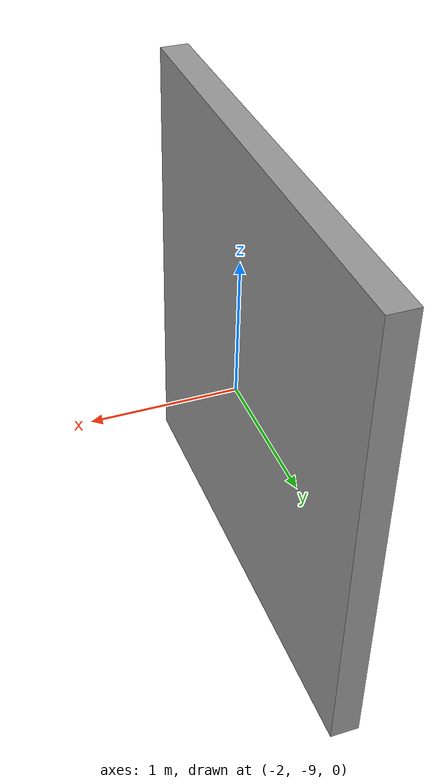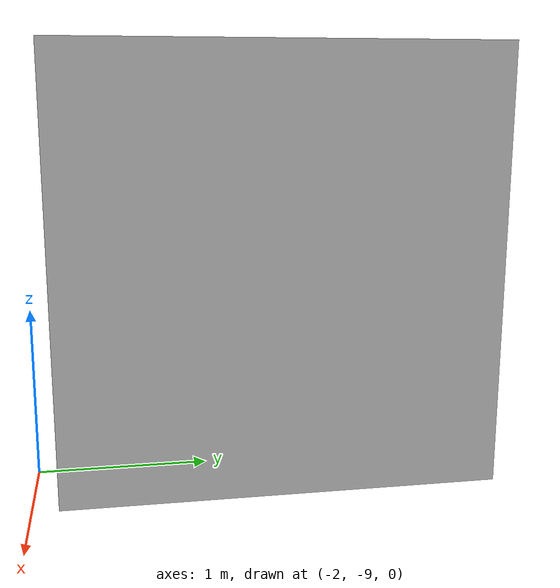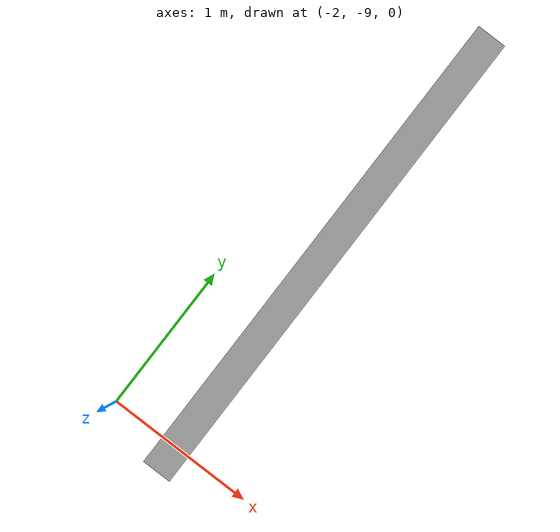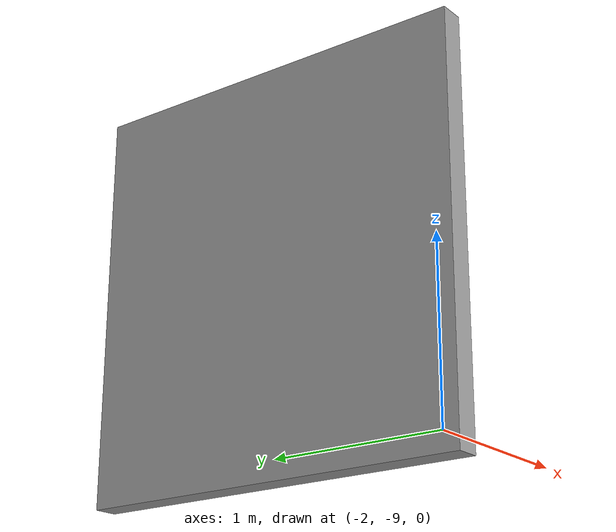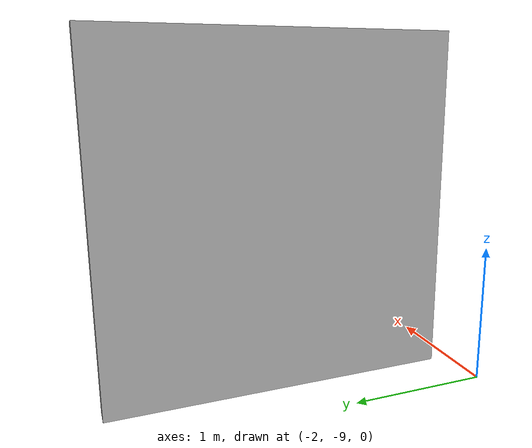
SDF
<?xml version='1.0'?>
<sdf version='1.7'>
  <model name='fix_wall3'>
    <pose>-0.805809 -4.42775 0 0 -0 0</pose>
    <link name='Wall_21'>
      <collision name='Wall_21_Collision'>
        <geometry>
          <box>
            <size>2.5 0.15 2.5</size>
          </box>
        </geometry>
        <pose>0 0 1.25 0 -0 0</pose>
      </collision>
      <visual name='Wall_21_Visual'>
        <pose>0 0 1.25 0 -0 0</pose>
        <geometry>
          <box>
            <size>2.5 0.15 2.5</size>
          </box>
        </geometry>
        <material>
          <script>
            <uri>file://media/materials/scripts/gazebo.material</uri>
            <name>Gazebo/Grey</name>
          </script>
          <ambient>1 1 1 1</ambient>
        </material>
        <meta>
          <layer>0</layer>
        </meta>
      </visual>
      <pose>-0.730809 -3.17775 0 0 -0 1.5708</pose>
    </link>
    <static>1</static>
  </model>
</sdf>
